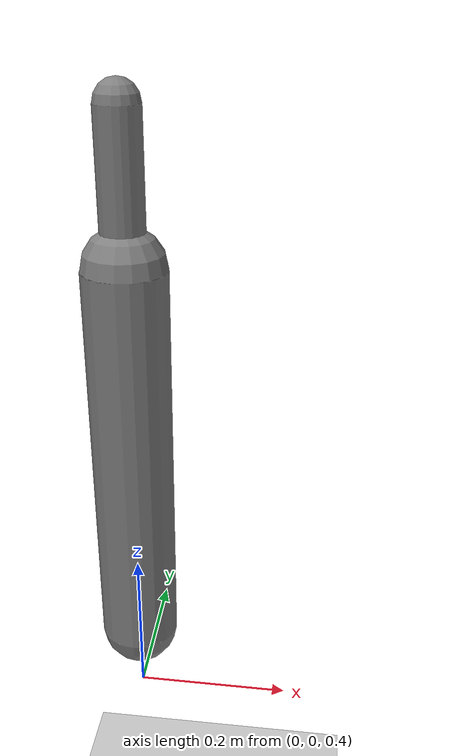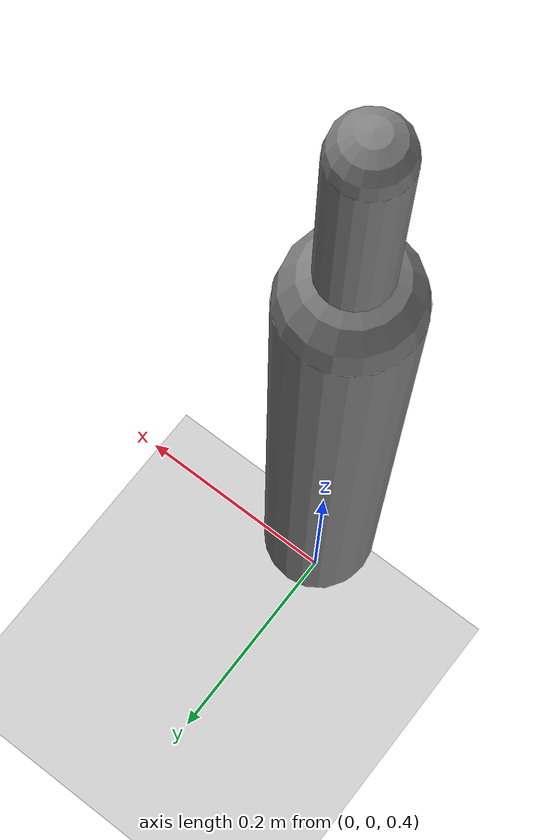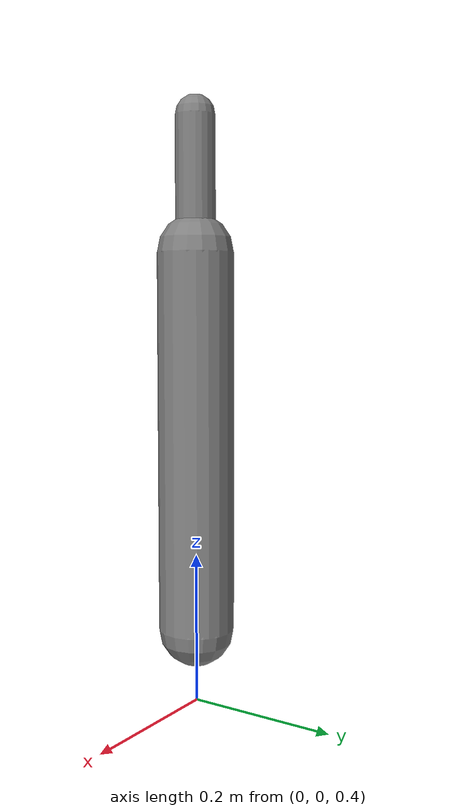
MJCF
<?xml version='1.0' encoding='UTF-8'?>
<mujoco model="RobotModel">
  <option gravity="0 0 -9.81" timestep="0.002" solver="CG" iterations="500" integrator="Euler"/>
  <worldbody>
    <geom name="Floor" type="plane" size="10 10 0.1" pos="0 0 0" rgba="0.8 0.8 0.8 1"/>
    <body name="Limb0" pos="0 0 0.5">
      <geom type="capsule" fromto="0 0 0 0 0 0.5" size="0.05" density="1000" contype="1" conaffinity="1"/>
      <body name="Limb0_3ae4055e" pos="0 0 0.5">
        <geom type="capsule" fromto="0 0 0 0 0 0.17338118835306235" size="0.02593760855081425" density="500.0" contype="1" conaffinity="1"/>
        <joint name="Joint_Limb0_Limb0_3ae4055e_0" type="hinge" axis="1 0 0" range="-60 60"/>
      </body>
      <body name="Limb1_3ae4055e" pos="0 0 0.5">
        <geom type="capsule" fromto="0 0 0 0 0 0.1751836242274203" size="0.02253061590704503" density="500.0" contype="1" conaffinity="1"/>
        <joint name="Joint_Limb0_Limb1_3ae4055e_0" type="hinge" axis="0 1 0" range="-60 60"/>
      </body>
    </body>
  </worldbody>
  <actuator>
    <position name="position_Actuator_Joint_Limb0_Limb0_3ae4055e_0" joint="Joint_Limb0_Limb0_3ae4055e_0" gear="1.0"/>
    <position name="position_Actuator_Joint_Limb0_Limb1_3ae4055e_0" joint="Joint_Limb0_Limb1_3ae4055e_0" gear="1.0"/>
  </actuator>
</mujoco>
